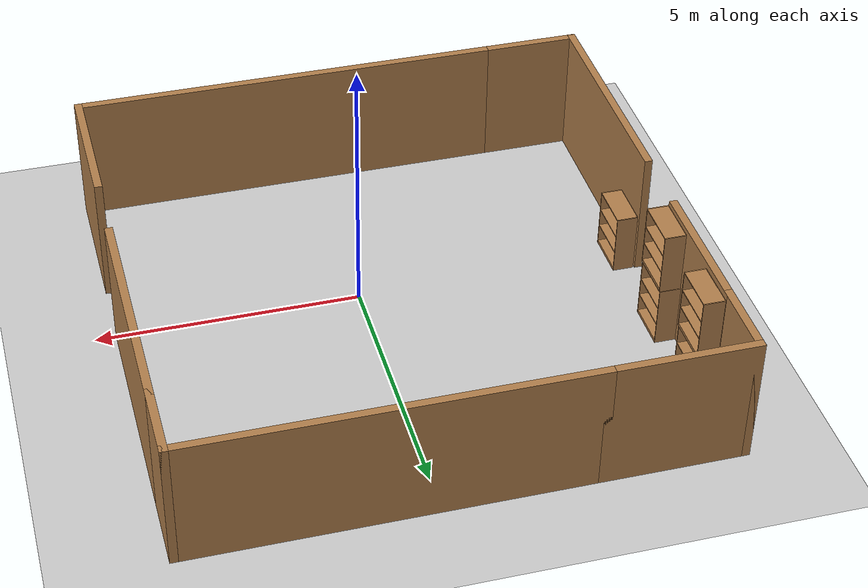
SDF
<sdf version="1.7">
 <world name="default">
  <model name="ground_plane">
   <static>1</static>
   <link name="link">
    <collision name="collision">
     <geometry><plane><normal>0 0 1</normal><size>100 100</size></plane></geometry>
     <surface><friction><ode><mu>100</mu><mu2>50</mu2></ode></friction></surface>
    </collision>
    <visual name="visual">
     <cast_shadows>0</cast_shadows>
     <geometry><plane><normal>0 0 1</normal><size>100 100</size></plane></geometry>
     <material>
      <script><uri>file://media/materials/scripts/gazebo.material</uri><name>Gazebo/Grey</name></script>
     </material>
    </visual>
   </link>
  </model>
  <model name="shopping_mart_box">
   <pose>-0.44063 0.87202 0 0 -0 0</pose>
   <link name="Wall_11">
    <collision name="Wall_11_Collision">
     <geometry><box><size>2 0.15 2.5</size></box></geometry>
     <pose>0 0 1.25 0 -0 0</pose>
    </collision>
    <visual name="Wall_11_Visual">
     <pose>0 0 1.25 0 -0 0</pose>
     <geometry><box><size>2 0.15 2.5</size></box></geometry>
     <material>
      <script><uri>file://media/materials/scripts/gazebo.material</uri><name>Gazebo/Wood</name></script>
      <ambient>1 1 1 1</ambient>
     </material>
    </visual>
    <pose>-4.05 -4.85 0 0 -0 3.14159</pose>
   </link>
   <link name="Wall_12">
    <collision name="Wall_12_Collision">
     <geometry><box><size>4.5 0.15 2.5</size></box></geometry>
     <pose>0 0 1.25 0 -0 0</pose>
    </collision>
    <visual name="Wall_12_Visual">
     <pose>0 0 1.25 0 -0 0</pose>
     <geometry><box><size>4.5 0.15 2.5</size></box></geometry>
     <material>
      <script><uri>file://media/materials/scripts/gazebo.material</uri><name>Gazebo/Wood</name></script>
      <ambient>1 1 1 1</ambient>
     </material>
    </visual>
    <pose>-4.975 -2.675 0 0 -0 1.5708</pose>
   </link>
   <link name="Wall_15">
    <collision name="Wall_15_Collision">
     <geometry><box><size>2.75 0.15 2.5</size></box></geometry>
     <pose>0 0 1.25 0 -0 0</pose>
    </collision>
    <visual name="Wall_15_Visual">
     <pose>0 0 1.25 0 -0 0</pose>
     <geometry><box><size>2.75 0.15 2.5</size></box></geometry>
     <material>
      <script><uri>file://media/materials/scripts/gazebo.material</uri><name>Gazebo/Wood</name></script>
      <ambient>1 1 1 1</ambient>
     </material>
    </visual>
    <pose>-4.975 2.2 0 0 0 -1.5708</pose>
   </link>
   <link name="Wall_17">
    <collision name="Wall_17_Collision">
     <geometry><box><size>1.5 0.15 2.5</size></box></geometry>
     <pose>0 0 1.25 0 -0 0</pose>
    </collision>
    <visual name="Wall_17_Visual">
     <pose>0 0 1.25 0 -0 0</pose>
     <geometry><box><size>1.5 0.15 2.5</size></box></geometry>
     <material>
      <script><uri>file://media/materials/scripts/gazebo.material</uri><name>Gazebo/Wood</name></script>
      <ambient>1 1 1 1</ambient>
     </material>
    </visual>
    <pose>-4.975 4.175 0 0 -0 1.5708</pose>
   </link>
   <link name="Wall_21">
    <collision name="Wall_21_Collision">
     <geometry><box><size>2.75 0.15 2.5</size></box></geometry>
     <pose>0 0 1.25 0 -0 0</pose>
    </collision>
    <visual name="Wall_21_Visual">
     <pose>0 0 1.25 0 -0 0</pose>
     <geometry><box><size>2.75 0.15 2.5</size></box></geometry>
     <material>
      <script><uri>file://media/materials/scripts/gazebo.material</uri><name>Gazebo/Wood</name></script>
      <ambient>1 1 1 1</ambient>
     </material>
    </visual>
    <pose>-3.675 4.85 0 0 -0 0</pose>
   </link>
   <link name="Wall_22">
    <collision name="Wall_22_Collision">
     <geometry><box><size>7.5 0.15 2.5</size></box></geometry>
     <pose>0 0 1.25 0 -0 0</pose>
    </collision>
    <visual name="Wall_22_Visual">
     <pose>0 0 1.25 0 -0 0</pose>
     <geometry><box><size>7.5 0.15 2.5</size></box></geometry>
     <material>
      <script><uri>file://media/materials/scripts/gazebo.material</uri><name>Gazebo/Wood</name></script>
      <ambient>1 1 1 1</ambient>
     </material>
    </visual>
    <pose>1.3 4.85 0 0 -0 0</pose>
   </link>
   <link name="Wall_23">
    <collision name="Wall_23_Collision">
     <geometry><box><size>1.5 0.15 2.5</size></box></geometry>
     <pose>0 0 1.25 0 -0 0</pose>
    </collision>
    <visual name="Wall_23_Visual">
     <pose>0 0 1.25 0 -0 0</pose>
     <geometry><box><size>1.5 0.15 2.5</size></box></geometry>
     <material>
      <script><uri>file://media/materials/scripts/gazebo.material</uri><name>Gazebo/Wood</name></script>
      <ambient>1 1 1 1</ambient>
     </material>
    </visual>
    <pose>4.975 4.175 0 0 0 -1.5708</pose>
   </link>
   <link name="Wall_29">
    <collision name="Wall_29_Collision">
     <geometry><box><size>4.5 0.15 2.5</size></box></geometry>
     <pose>0 0 1.25 0 -0 0</pose>
    </collision>
    <visual name="Wall_29_Visual">
     <pose>0 0 1.25 0 -0 0</pose>
     <geometry><box><size>4.5 0.15 2.5</size></box></geometry>
     <material>
      <script><uri>file://media/materials/scripts/gazebo.material</uri><name>Gazebo/Wood</name></script>
      <ambient>1 1 1 1</ambient>
     </material>
    </visual>
    <pose>4.975 1.325 0 0 0 -1.5708</pose>
   </link>
   <link name="Wall_31">
    <collision name="Wall_31_Collision">
     <geometry><box><size>2.75 0.15 2.5</size></box></geometry>
     <pose>0 0 1.25 0 -0 0</pose>
    </collision>
    <visual name="Wall_31_Visual">
     <pose>0 0 1.25 0 -0 0</pose>
     <geometry><box><size>2.75 0.15 2.5</size></box></geometry>
     <material>
      <script><uri>file://media/materials/scripts/gazebo.material</uri><name>Gazebo/Wood</name></script>
      <ambient>1 1 1 1</ambient>
     </material>
    </visual>
    <pose>4.975 -3.55 0 0 -0 1.5708</pose>
   </link>
   <link name="Wall_6">
    <collision name="Wall_6_Collision">
     <geometry><box><size>8.25 0.15 2.5</size></box></geometry>
     <pose>0 0 1.25 0 -0 0</pose>
    </collision>
    <visual name="Wall_6_Visual">
     <pose>0 0 1.25 0 -0 0</pose>
     <geometry><box><size>8.25 0.15 2.5</size></box></geometry>
     <material>
      <script><uri>file://media/materials/scripts/gazebo.material</uri><name>Gazebo/Wood</name></script>
      <ambient>1 1 1 1</ambient>
     </material>
    </visual>
    <pose>0.925 -4.85 0 0 -0 0</pose>
   </link>
   <static>1</static>
  </model>
  <model name="bookshelf_0_clone_0">
   <static>1</static>
   <link name="link">
    <inertial><mass>1</mass></inertial>
    <collision name="back">
     <pose>0 0.005 0.6 0 -0 0</pose>
     <geometry><box><size>0.9 0.01 1.2</size></box></geometry>
    </collision>
    <visual name="visual1">
     <pose>0 0.005 0.6 0 -0 0</pose>
     <geometry><box><size>0.9 0.01 1.2</size></box></geometry>
     <material>
      <script><uri>file://media/materials/scripts/gazebo.material</uri><name>Gazebo/Wood</name></script>
     </material>
    </visual>
    <collision name="left_side">
     <pose>0.45 -0.195 0.6 0 -0 0</pose>
     <geometry><box><size>0.02 0.4 1.2</size></box></geometry>
    </collision>
    <visual name="visual2">
     <pose>0.45 -0.195 0.6 0 -0 0</pose>
     <geometry><box><size>0.02 0.4 1.2</size></box></geometry>
     <material>
      <script><uri>file://media/materials/scripts/gazebo.material</uri><name>Gazebo/Wood</name></script>
     </material>
    </visual>
    <collision name="right_side">
     <pose>-0.45 -0.195 0.6 0 -0 0</pose>
     <geometry><box><size>0.02 0.4 1.2</size></box></geometry>
    </collision>
    <visual name="visual3">
     <pose>-0.45 -0.195 0.6 0 -0 0</pose>
     <geometry><box><size>0.02 0.4 1.2</size></box></geometry>
     <material>
      <script><uri>file://media/materials/scripts/gazebo.material</uri><name>Gazebo/Wood</name></script>
     </material>
    </visual>
    <collision name="bottom">
     <pose>0 -0.195 0.03 0 -0 0</pose>
     <geometry><box><size>0.88 0.4 0.06</size></box></geometry>
    </collision>
    <visual name="visual4">
     <pose>0 -0.195 0.03 0 -0 0</pose>
     <geometry><box><size>0.88 0.4 0.06</size></box></geometry>
     <material>
      <script><uri>file://media/materials/scripts/gazebo.material</uri><name>Gazebo/Wood</name></script>
     </material>
    </visual>
    <collision name="top">
     <pose>0 -0.195 1.19 0 -0 0</pose>
     <geometry><box><size>0.88 0.4 0.02</size></box></geometry>
    </collision>
    <visual name="visual5">
     <pose>0 -0.195 1.19 0 -0 0</pose>
     <geometry><box><size>0.88 0.4 0.02</size></box></geometry>
     <material>
      <script><uri>file://media/materials/scripts/gazebo.material</uri><name>Gazebo/Wood</name></script>
     </material>
    </visual>
    <collision name="low_shelf">
     <pose>0 -0.195 0.43 0 -0 0</pose>
     <geometry><box><size>0.88 0.4 0.02</size></box></geometry>
    </collision>
    <visual name="visual6">
     <pose>0 -0.195 0.43 0 -0 0</pose>
     <geometry><box><size>0.88 0.4 0.02</size></box></geometry>
     <material>
      <script><uri>file://media/materials/scripts/gazebo.material</uri><name>Gazebo/Wood</name></script>
     </material>
    </visual>
    <collision name="high_shelf">
     <pose>0 -0.195 0.8 0 -0 0</pose>
     <geometry><box><size>0.88 0.4 0.02</size></box></geometry>
    </collision>
    <visual name="visual7">
     <pose>0 -0.195 0.8 0 -0 0</pose>
     <geometry><box><size>0.88 0.4 0.02</size></box></geometry>
     <material>
      <script><uri>file://media/materials/scripts/gazebo.material</uri><name>Gazebo/Wood</name></script>
     </material>
    </visual>
   </link>
   <pose>-5.30935 -0.025093 0 0 -0 1.5697</pose>
  </model>
  <model name="bookshelf_0_clone_0_clone">
   <static>1</static>
   <link name="link">
    <inertial><mass>1</mass></inertial>
    <collision name="back">
     <pose>0 0.005 0.6 0 -0 0</pose>
     <geometry><box><size>0.9 0.01 1.2</size></box></geometry>
    </collision>
    <visual name="visual1">
     <pose>0 0.005 0.6 0 -0 0</pose>
     <geometry><box><size>0.9 0.01 1.2</size></box></geometry>
     <material>
      <script><uri>file://media/materials/scripts/gazebo.material</uri><name>Gazebo/Wood</name></script>
     </material>
    </visual>
    <collision name="left_side">
     <pose>0.45 -0.195 0.6 0 -0 0</pose>
     <geometry><box><size>0.02 0.4 1.2</size></box></geometry>
    </collision>
    <visual name="visual2">
     <pose>0.45 -0.195 0.6 0 -0 0</pose>
     <geometry><box><size>0.02 0.4 1.2</size></box></geometry>
     <material>
      <script><uri>file://media/materials/scripts/gazebo.material</uri><name>Gazebo/Wood</name></script>
     </material>
    </visual>
    <collision name="right_side">
     <pose>-0.45 -0.195 0.6 0 -0 0</pose>
     <geometry><box><size>0.02 0.4 1.2</size></box></geometry>
    </collision>
    <visual name="visual3">
     <pose>-0.45 -0.195 0.6 0 -0 0</pose>
     <geometry><box><size>0.02 0.4 1.2</size></box></geometry>
     <material>
      <script><uri>file://media/materials/scripts/gazebo.material</uri><name>Gazebo/Wood</name></script>
     </material>
    </visual>
    <collision name="bottom">
     <pose>0 -0.195 0.03 0 -0 0</pose>
     <geometry><box><size>0.88 0.4 0.06</size></box></geometry>
    </collision>
    <visual name="visual4">
     <pose>0 -0.195 0.03 0 -0 0</pose>
     <geometry><box><size>0.88 0.4 0.06</size></box></geometry>
     <material>
      <script><uri>file://media/materials/scripts/gazebo.material</uri><name>Gazebo/Wood</name></script>
     </material>
    </visual>
    <collision name="top">
     <pose>0 -0.195 1.19 0 -0 0</pose>
     <geometry><box><size>0.88 0.4 0.02</size></box></geometry>
    </collision>
    <visual name="visual5">
     <pose>0 -0.195 1.19 0 -0 0</pose>
     <geometry><box><size>0.88 0.4 0.02</size></box></geometry>
     <material>
      <script><uri>file://media/materials/scripts/gazebo.material</uri><name>Gazebo/Wood</name></script>
     </material>
    </visual>
    <collision name="low_shelf">
     <pose>0 -0.195 0.43 0 -0 0</pose>
     <geometry><box><size>0.88 0.4 0.02</size></box></geometry>
    </collision>
    <visual name="visual6">
     <pose>0 -0.195 0.43 0 -0 0</pose>
     <geometry><box><size>0.88 0.4 0.02</size></box></geometry>
     <material>
      <script><uri>file://media/materials/scripts/gazebo.material</uri><name>Gazebo/Wood</name></script>
     </material>
    </visual>
    <collision name="high_shelf">
     <pose>0 -0.195 0.8 0 -0 0</pose>
     <geometry><box><size>0.88 0.4 0.02</size></box></geometry>
    </collision>
    <visual name="visual7">
     <pose>0 -0.195 0.8 0 -0 0</pose>
     <geometry><box><size>0.88 0.4 0.02</size></box></geometry>
     <material>
      <script><uri>file://media/materials/scripts/gazebo.material</uri><name>Gazebo/Wood</name></script>
     </material>
    </visual>
   </link>
   <pose>-5.33454 2.15943 0 0 -0 1.5697</pose>
  </model>
  <model name="bookshelf_0_clone_0_clone_0">
   <static>1</static>
   <link name="link">
    <inertial><mass>1</mass></inertial>
    <collision name="back">
     <pose>0 0.005 0.6 0 -0 0</pose>
     <geometry><box><size>0.9 0.01 1.2</size></box></geometry>
    </collision>
    <visual name="visual1">
     <pose>0 0.005 0.6 0 -0 0</pose>
     <geometry><box><size>0.9 0.01 1.2</size></box></geometry>
     <material>
      <script><uri>file://media/materials/scripts/gazebo.material</uri><name>Gazebo/Wood</name></script>
     </material>
    </visual>
    <collision name="left_side">
     <pose>0.45 -0.195 0.6 0 -0 0</pose>
     <geometry><box><size>0.02 0.4 1.2</size></box></geometry>
    </collision>
    <visual name="visual2">
     <pose>0.45 -0.195 0.6 0 -0 0</pose>
     <geometry><box><size>0.02 0.4 1.2</size></box></geometry>
     <material>
      <script><uri>file://media/materials/scripts/gazebo.material</uri><name>Gazebo/Wood</name></script>
     </material>
    </visual>
    <collision name="right_side">
     <pose>-0.45 -0.195 0.6 0 -0 0</pose>
     <geometry><box><size>0.02 0.4 1.2</size></box></geometry>
    </collision>
    <visual name="visual3">
     <pose>-0.45 -0.195 0.6 0 -0 0</pose>
     <geometry><box><size>0.02 0.4 1.2</size></box></geometry>
     <material>
      <script><uri>file://media/materials/scripts/gazebo.material</uri><name>Gazebo/Wood</name></script>
     </material>
    </visual>
    <collision name="bottom">
     <pose>0 -0.195 0.03 0 -0 0</pose>
     <geometry><box><size>0.88 0.4 0.06</size></box></geometry>
    </collision>
    <visual name="visual4">
     <pose>0 -0.195 0.03 0 -0 0</pose>
     <geometry><box><size>0.88 0.4 0.06</size></box></geometry>
     <material>
      <script><uri>file://media/materials/scripts/gazebo.material</uri><name>Gazebo/Wood</name></script>
     </material>
    </visual>
    <collision name="top">
     <pose>0 -0.195 1.19 0 -0 0</pose>
     <geometry><box><size>0.88 0.4 0.02</size></box></geometry>
    </collision>
    <visual name="visual5">
     <pose>0 -0.195 1.19 0 -0 0</pose>
     <geometry><box><size>0.88 0.4 0.02</size></box></geometry>
     <material>
      <script><uri>file://media/materials/scripts/gazebo.material</uri><name>Gazebo/Wood</name></script>
     </material>
    </visual>
    <collision name="low_shelf">
     <pose>0 -0.195 0.43 0 -0 0</pose>
     <geometry><box><size>0.88 0.4 0.02</size></box></geometry>
    </collision>
    <visual name="visual6">
     <pose>0 -0.195 0.43 0 -0 0</pose>
     <geometry><box><size>0.88 0.4 0.02</size></box></geometry>
     <material>
      <script><uri>file://media/materials/scripts/gazebo.material</uri><name>Gazebo/Wood</name></script>
     </material>
    </visual>
    <collision name="high_shelf">
     <pose>0 -0.195 0.8 0 -0 0</pose>
     <geometry><box><size>0.88 0.4 0.02</size></box></geometry>
    </collision>
    <visual name="visual7">
     <pose>0 -0.195 0.8 0 -0 0</pose>
     <geometry><box><size>0.88 0.4 0.02</size></box></geometry>
     <material>
      <script><uri>file://media/materials/scripts/gazebo.material</uri><name>Gazebo/Wood</name></script>
     </material>
    </visual>
   </link>
   <pose>-5.32765 4.01778 0 0 -0 1.5697</pose>
  </model>
  <model name="bookshelf_0_clone_0_clone_1_clone_0">
   <static>1</static>
   <link name="link">
    <inertial><mass>1</mass></inertial>
    <collision name="back">
     <pose>0 0.005 0.6 0 -0 0</pose>
     <geometry><box><size>0.9 0.01 1.2</size></box></geometry>
    </collision>
    <visual name="visual1">
     <pose>0 0.005 0.6 0 -0 0</pose>
     <geometry><box><size>0.9 0.01 1.2</size></box></geometry>
     <material>
      <script><uri>file://media/materials/scripts/gazebo.material</uri><name>Gazebo/Wood</name></script>
     </material>
    </visual>
    <collision name="left_side">
     <pose>0.45 -0.195 0.6 0 -0 0</pose>
     <geometry><box><size>0.02 0.4 1.2</size></box></geometry>
    </collision>
    <visual name="visual2">
     <pose>0.45 -0.195 0.6 0 -0 0</pose>
     <geometry><box><size>0.02 0.4 1.2</size></box></geometry>
     <material>
      <script><uri>file://media/materials/scripts/gazebo.material</uri><name>Gazebo/Wood</name></script>
     </material>
    </visual>
    <collision name="right_side">
     <pose>-0.45 -0.195 0.6 0 -0 0</pose>
     <geometry><box><size>0.02 0.4 1.2</size></box></geometry>
    </collision>
    <visual name="visual3">
     <pose>-0.45 -0.195 0.6 0 -0 0</pose>
     <geometry><box><size>0.02 0.4 1.2</size></box></geometry>
     <material>
      <script><uri>file://media/materials/scripts/gazebo.material</uri><name>Gazebo/Wood</name></script>
     </material>
    </visual>
    <collision name="bottom">
     <pose>0 -0.195 0.03 0 -0 0</pose>
     <geometry><box><size>0.88 0.4 0.06</size></box></geometry>
    </collision>
    <visual name="visual4">
     <pose>0 -0.195 0.03 0 -0 0</pose>
     <geometry><box><size>0.88 0.4 0.06</size></box></geometry>
     <material>
      <script><uri>file://media/materials/scripts/gazebo.material</uri><name>Gazebo/Wood</name></script>
     </material>
    </visual>
    <collision name="top">
     <pose>0 -0.195 1.19 0 -0 0</pose>
     <geometry><box><size>0.88 0.4 0.02</size></box></geometry>
    </collision>
    <visual name="visual5">
     <pose>0 -0.195 1.19 0 -0 0</pose>
     <geometry><box><size>0.88 0.4 0.02</size></box></geometry>
     <material>
      <script><uri>file://media/materials/scripts/gazebo.material</uri><name>Gazebo/Wood</name></script>
     </material>
    </visual>
    <collision name="low_shelf">
     <pose>0 -0.195 0.43 0 -0 0</pose>
     <geometry><box><size>0.88 0.4 0.02</size></box></geometry>
    </collision>
    <visual name="visual6">
     <pose>0 -0.195 0.43 0 -0 0</pose>
     <geometry><box><size>0.88 0.4 0.02</size></box></geometry>
     <material>
      <script><uri>file://media/materials/scripts/gazebo.material</uri><name>Gazebo/Wood</name></script>
     </material>
    </visual>
    <collision name="high_shelf">
     <pose>0 -0.195 0.8 0 -0 0</pose>
     <geometry><box><size>0.88 0.4 0.02</size></box></geometry>
    </collision>
    <visual name="visual7">
     <pose>0 -0.195 0.8 0 -0 0</pose>
     <geometry><box><size>0.88 0.4 0.02</size></box></geometry>
     <material>
      <script><uri>file://media/materials/scripts/gazebo.material</uri><name>Gazebo/Wood</name></script>
     </material>
    </visual>
   </link>
   <pose>-5.32334 2.15341 1.21067 0 -0 1.5697</pose>
  </model>
  <model name="bookshelf_0_clone_0_clone_1_clone_1">
   <static>1</static>
   <link name="link">
    <inertial><mass>1</mass></inertial>
    <collision name="back">
     <pose>0 0.005 0.6 0 -0 0</pose>
     <geometry><box><size>0.9 0.01 1.2</size></box></geometry>
    </collision>
    <visual name="visual1">
     <pose>0 0.005 0.6 0 -0 0</pose>
     <geometry><box><size>0.9 0.01 1.2</size></box></geometry>
     <material>
      <script><uri>file://media/materials/scripts/gazebo.material</uri><name>Gazebo/Wood</name></script>
     </material>
    </visual>
    <collision name="left_side">
     <pose>0.45 -0.195 0.6 0 -0 0</pose>
     <geometry><box><size>0.02 0.4 1.2</size></box></geometry>
    </collision>
    <visual name="visual2">
     <pose>0.45 -0.195 0.6 0 -0 0</pose>
     <geometry><box><size>0.02 0.4 1.2</size></box></geometry>
     <material>
      <script><uri>file://media/materials/scripts/gazebo.material</uri><name>Gazebo/Wood</name></script>
     </material>
    </visual>
    <collision name="right_side">
     <pose>-0.45 -0.195 0.6 0 -0 0</pose>
     <geometry><box><size>0.02 0.4 1.2</size></box></geometry>
    </collision>
    <visual name="visual3">
     <pose>-0.45 -0.195 0.6 0 -0 0</pose>
     <geometry><box><size>0.02 0.4 1.2</size></box></geometry>
     <material>
      <script><uri>file://media/materials/scripts/gazebo.material</uri><name>Gazebo/Wood</name></script>
     </material>
    </visual>
    <collision name="bottom">
     <pose>0 -0.195 0.03 0 -0 0</pose>
     <geometry><box><size>0.88 0.4 0.06</size></box></geometry>
    </collision>
    <visual name="visual4">
     <pose>0 -0.195 0.03 0 -0 0</pose>
     <geometry><box><size>0.88 0.4 0.06</size></box></geometry>
     <material>
      <script><uri>file://media/materials/scripts/gazebo.material</uri><name>Gazebo/Wood</name></script>
     </material>
    </visual>
    <collision name="top">
     <pose>0 -0.195 1.19 0 -0 0</pose>
     <geometry><box><size>0.88 0.4 0.02</size></box></geometry>
    </collision>
    <visual name="visual5">
     <pose>0 -0.195 1.19 0 -0 0</pose>
     <geometry><box><size>0.88 0.4 0.02</size></box></geometry>
     <material>
      <script><uri>file://media/materials/scripts/gazebo.material</uri><name>Gazebo/Wood</name></script>
     </material>
    </visual>
    <collision name="low_shelf">
     <pose>0 -0.195 0.43 0 -0 0</pose>
     <geometry><box><size>0.88 0.4 0.02</size></box></geometry>
    </collision>
    <visual name="visual6">
     <pose>0 -0.195 0.43 0 -0 0</pose>
     <geometry><box><size>0.88 0.4 0.02</size></box></geometry>
     <material>
      <script><uri>file://media/materials/scripts/gazebo.material</uri><name>Gazebo/Wood</name></script>
     </material>
    </visual>
    <collision name="high_shelf">
     <pose>0 -0.195 0.8 0 -0 0</pose>
     <geometry><box><size>0.88 0.4 0.02</size></box></geometry>
    </collision>
    <visual name="visual7">
     <pose>0 -0.195 0.8 0 -0 0</pose>
     <geometry><box><size>0.88 0.4 0.02</size></box></geometry>
     <material>
      <script><uri>file://media/materials/scripts/gazebo.material</uri><name>Gazebo/Wood</name></script>
     </material>
    </visual>
   </link>
   <pose>-5.31196 4.0164 1.21067 0 -0 1.5697</pose>
  </model>
  <model name="beer_3_clone_clone_clone_clone_clone_0">
   <link name="link">
    <pose>0 0 0.115 0 -0 0</pose>
    <inertial>
     <mass>0.39</mass>
     <inertia><ixx>0.00058</ixx><ixy>0</ixy><ixz>0</ixz><iyy>0.00058</iyy><iyz>0</iyz><izz>0.00019</izz></inertia>
    </inertial>
    <collision name="collision">
     <geometry><cylinder><radius>0.055</radius><length>0.23</length></cylinder></geometry>
    </collision>
    <visual name="visual">
     <geometry><cylinder><radius>0.055</radius><length>0.23</length></cylinder></geometry>
     <material>
      <script>
       <uri>model://beer/materials/scripts</uri>
       <uri>model://beer/materials/textures</uri>
       <name>Beer/Diffuse</name>
      </script>
     </material>
    </visual>
   </link>
   <pose>-1.66064 5.25838 0.809995 4.3e-05 7.7e-05 0.03132</pose>
  </model>
  <model name="beer_3_clone_clone_clone_clone_clone">
   <link name="link">
    <pose>0 0 0.115 0 -0 0</pose>
    <inertial>
     <mass>0.39</mass>
     <inertia><ixx>0.00058</ixx><ixy>0</ixy><ixz>0</ixz><iyy>0.00058</iyy><iyz>0</iyz><izz>0.00019</izz></inertia>
    </inertial>
    <collision name="collision">
     <geometry><cylinder><radius>0.055</radius><length>0.23</length></cylinder></geometry>
    </collision>
    <visual name="visual">
     <geometry><cylinder><radius>0.055</radius><length>0.23</length></cylinder></geometry>
     <material>
      <script>
       <uri>model://beer/materials/scripts</uri>
       <uri>model://beer/materials/textures</uri>
       <name>Beer/Diffuse</name>
      </script>
     </material>
    </visual>
   </link>
   <pose>-1.4248 5.25479 0.810003 2.6e-05 5.8e-05 0.02963</pose>
  </model>
  <model name="beer_3_clone_clone_clone_clone_clone_2">
   <link name="link">
    <pose>0 0 0.115 0 -0 0</pose>
    <inertial>
     <mass>0.39</mass>
     <inertia><ixx>0.00058</ixx><ixy>0</ixy><ixz>0</ixz><iyy>0.00058</iyy><iyz>0</iyz><izz>0.00019</izz></inertia>
    </inertial>
    <collision name="collision">
     <geometry><cylinder><radius>0.055</radius><length>0.23</length></cylinder></geometry>
    </collision>
    <visual name="visual">
     <geometry><cylinder><radius>0.055</radius><length>0.23</length></cylinder></geometry>
     <material>
      <script>
       <uri>model://beer/materials/scripts</uri>
       <uri>model://beer/materials/textures</uri>
       <name>Beer/Diffuse</name>
      </script>
     </material>
    </visual>
   </link>
   <pose>-0.945588 5.26098 0.809991 7e-06 -1e-05 0.044642</pose>
  </model>
 </world>
</sdf>
